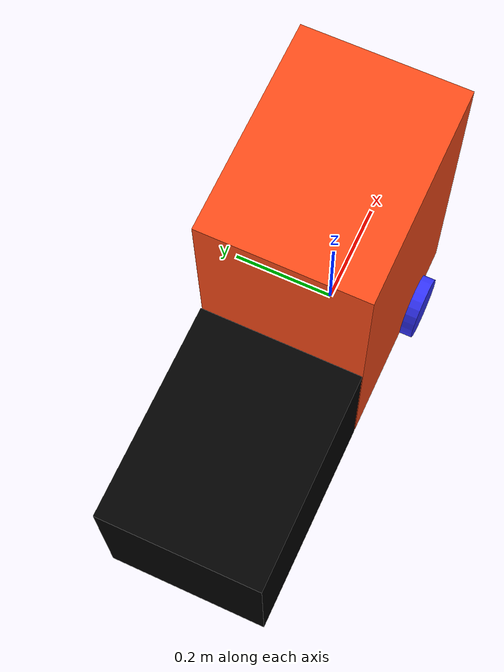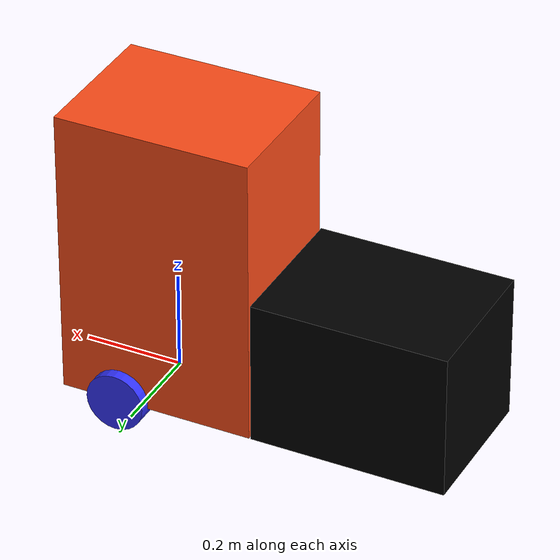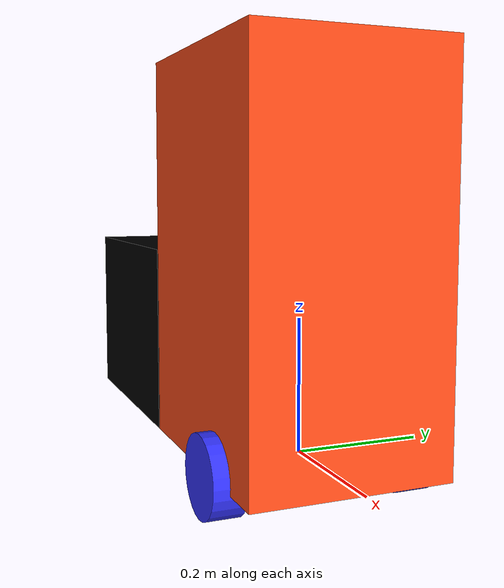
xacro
<?xml version="1.0"?>
<robot xmlns:xacro="http://www.ros.org/wiki/xacro" >

    <xacro:include filename="inertial_macros.xacro"/>

    <xacro:property name="chassis_length" value="0.4"/>
    <xacro:property name="chassis_width" value="0.3"/>
    <xacro:property name="chassis_height" value="0.6"/>
    <xacro:property name="chassis_mass" value="1.0"/>
    <xacro:property name="wheel_radius" value="0.06"/>
    <xacro:property name="wheel_thickness" value="0.05"/>
    <xacro:property name="wheel_mass" value="0.05"/>
    <xacro:property name="wheel_offset_x" value="0.226"/>
    <xacro:property name="wheel_offset_y" value="0.1485"/>
    <xacro:property name="wheel_offset_z" value="0.01"/>
    <xacro:property name="caster_wheel_radius" value="0.028"/>
    <xacro:property name="caster_wheel_mass" value="0.01"/>
    <xacro:property name="caster_wheel_offset_x" value="-0.25"/>
    <xacro:property name="caster_wheel_offset_z" value="${wheel_offset_z - wheel_radius + caster_wheel_radius}"/>

    <material name="white">
        <color rgba="1 1 1 1" />
    </material>

    <material name="orange">
        <color rgba="1 0.3 0.1 1"/>
    </material>

    <material name="blue">
        <color rgba="0.2 0.2 1 1"/>
    </material>

    <material name="black">
        <color rgba="0 0 0 1"/>
    </material>

    <material name="red">
        <color rgba="1 0 0 1"/>
    </material>

    <!-- BASE LINK -->

    <link name="base_link">

    </link>

    <!-- BASE_FOOTPRINT LINK -->

    <joint name="base_footprint_joint" type="fixed">
        <parent link="base_link"/>
        <child link="base_footprint"/>
        <origin xyz="0 0 0" rpy="0 0 0"/>
    </joint>

    <link name="base_footprint">
    </link>

    <!-- CHASSIS LINK -->

    <joint name="chassis_joint" type="fixed">
        <parent link="base_link"/>
        <child link="chassis"/>
        <origin xyz="${-wheel_offset_x} 0 ${-wheel_offset_z}"/>
    </joint>

    <link name="chassis">
        <visual>
            <origin xyz="${chassis_length/2} 0 ${chassis_height/2}"/>
            <geometry>
                <box size="${chassis_length} ${chassis_width} ${chassis_height}"/>
            </geometry>
            <material name="orange"/>
        </visual>
        <collision>
            <origin xyz="${chassis_length/2} 0 ${chassis_height/2}"/>
            <geometry>
                <box size="${chassis_length} ${chassis_width} ${chassis_height}"/>
            </geometry>
        </collision>
        <xacro:inertial_box mass="0.5" x="${chassis_length}" y="${chassis_width}" z="${chassis_height}">
            <origin xyz="${chassis_length/2} 0 ${chassis_height/2}" rpy="0 0 0"/>
        </xacro:inertial_box>
    </link>

    <gazebo reference="chassis">
        <material>Gazebo/Orange</material>
    </gazebo>

    <!-- CHASSIS_OPTICAL LINK -->

    <joint name="chassis_optical_joint" type="fixed">
        <parent link="base_link"/>
        <child link="chassis_optical"/>
        <origin xyz="-0.43 0 ${-wheel_offset_z}"/>
    </joint>

    <link name="chassis_optical">
        <visual>
            <origin xyz="0 0 ${chassis_height/4}"/>
            <geometry>
                <box size="${chassis_length} ${chassis_width} ${chassis_height/2}"/>
            </geometry>
            <material name="black"/>
        </visual>
        <collision>
            <origin xyz="0 0 ${chassis_height/4}"/>
            <geometry>
                <box size="${chassis_length} ${chassis_width} ${chassis_height/2}"/>
            </geometry>
        </collision>
        <xacro:inertial_box mass="0.5" x="${chassis_length}" y="${chassis_width}" z="${chassis_height}">
            <origin xyz="0 0 ${chassis_height/4}" rpy="0 0 0"/>
        </xacro:inertial_box>
    </link>

    <gazebo reference="chassis_optical">
        <material>Gazebo/Black</material>
    </gazebo>

    <!-- LEFT WHEEL LINK -->

    <joint name="left_wheel_joint" type="continuous">
        <parent link="base_link"/>
        <child link="left_wheel"/>
        <origin xyz="0.05 ${wheel_offset_y} 0" rpy="-${pi/2} 0 0" />
        <axis xyz="0 0 1"/>
    </joint>

    <link name="left_wheel">
        <visual>
            <geometry>
                <cylinder radius="${wheel_radius}" length="${wheel_thickness}"/>
            </geometry>
            <material name="blue"/>
        </visual>
        <collision>
            <geometry>
                <sphere radius="${wheel_radius}"/>
            </geometry>
        </collision>
        <xacro:inertial_cylinder mass="${wheel_mass}" length="${wheel_thickness}" radius="${wheel_radius}">
            <origin xyz="0 0 0" rpy="0 0 0"/>
        </xacro:inertial_cylinder>
    </link>

    <gazebo reference="left_wheel">
        <material>Gazebo/Blue</material>
    </gazebo>

    <!-- RIGHT WHEEL LINK -->

    <joint name="right_wheel_joint" type="continuous">
        <parent link="base_link"/>
        <child link="right_wheel"/>
        <origin xyz="0.05 ${-wheel_offset_y} 0" rpy="${pi/2} 0 0" />
        <axis xyz="0 0 -1"/>
    </joint>

    <link name="right_wheel">
        <visual>
            <geometry>
                <cylinder radius="${wheel_radius}" length="${wheel_thickness}"/>
            </geometry>
            <material name="blue"/>
        </visual>
        <collision>
            <geometry>
                <sphere radius="${wheel_radius}"/>
            </geometry>
        </collision>
        <xacro:inertial_cylinder mass="${wheel_mass}" length="${wheel_thickness}" radius="${wheel_radius}">
            <origin xyz="0 0 0" rpy="0 0 0"/>
        </xacro:inertial_cylinder>
    </link>

    <gazebo reference="right_wheel">
        <material>Gazebo/Blue</material>
    </gazebo>

    <!-- CASTER WHEEL LINK -->

    <joint name="caster_wheel_joint" type="fixed">
        <parent link="chassis"/>
        <child link="caster_wheel"/>
        <origin xyz="${caster_wheel_offset_x} 0 ${caster_wheel_offset_z}"/>
    </joint>

    <link name="caster_wheel">
        <visual>
            <geometry>
                <sphere radius="${caster_wheel_radius}"/>
            </geometry>
            <material name="white"/>
        </visual>
        <collision>
            <geometry>
                <sphere radius="${caster_wheel_radius}"/>
            </geometry>
        </collision>
        <xacro:inertial_sphere mass="${caster_wheel_mass}" radius="${caster_wheel_radius}">
            <origin xyz="0 0 0" rpy="0 0 0"/>
        </xacro:inertial_sphere>
    </link>

    <gazebo reference="caster_wheel">
        <material>Gazebo/White</material>
        <mu1 value="0.001"/>
        <mu2 value="0.001"/>
    </gazebo>

</robot>

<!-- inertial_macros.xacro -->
<robot xmlns:xacro="http://www.ros.org/wiki/xacro" >

    <!-- Specify some standard inertial calculations https://en.wikipedia.org/wiki/List_of_moments_of_inertia -->
    <!-- These make use of xacro's mathematical functionality -->

    <xacro:macro name="inertial_sphere" params="mass radius *origin">
        <inertial>
            <xacro:insert_block name="origin"/>
            <mass value="${mass}" />
            <inertia ixx="${(2/5) * mass * (radius*radius)}" ixy="0.0" ixz="0.0"
                    iyy="${(2/5) * mass * (radius*radius)}" iyz="0.0"
                    izz="${(2/5) * mass * (radius*radius)}" />
        </inertial>
    </xacro:macro>

    <xacro:macro name="inertial_box" params="mass x y z *origin">
        <inertial>
            <xacro:insert_block name="origin"/>
            <mass value="${mass}" />
            <inertia ixx="${(1/12) * mass * (y*y+z*z)}" ixy="0.0" ixz="0.0"
                    iyy="${(1/12) * mass * (x*x+z*z)}" iyz="0.0"
                    izz="${(1/12) * mass * (x*x+y*y)}" />
        </inertial>
    </xacro:macro>

    <xacro:macro name="inertial_cylinder" params="mass length radius *origin">
        <inertial>
            <xacro:insert_block name="origin"/>
            <mass value="${mass}" />
            <inertia ixx="${(1/12) * mass * (3*radius*radius + length*length)}" ixy="0.0" ixz="0.0"
                    iyy="${(1/12) * mass * (3*radius*radius + length*length)}" iyz="0.0"
                    izz="${(1/2) * mass * (radius*radius)}" />
        </inertial>
    </xacro:macro>

</robot>
